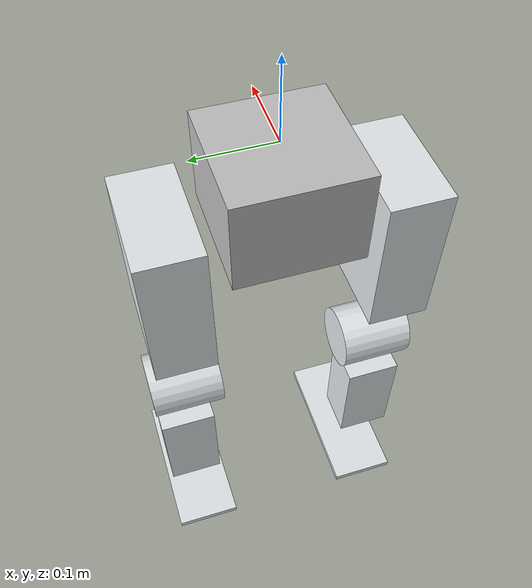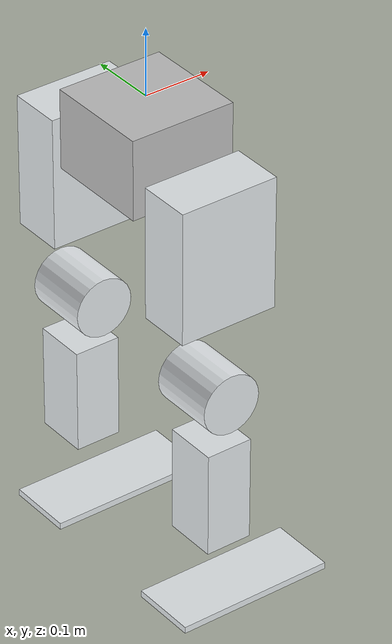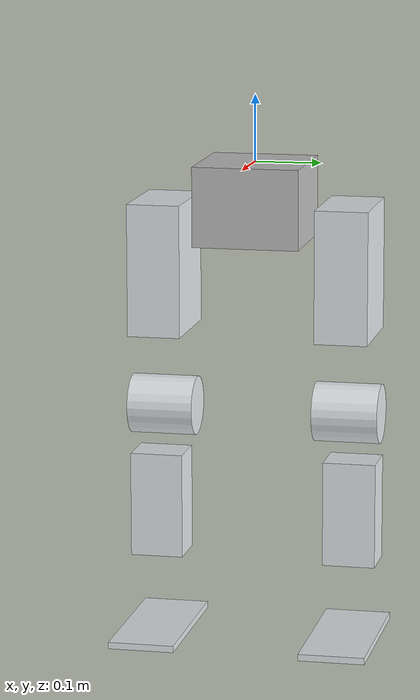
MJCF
<mujoco model="alexbotmini">
  <compiler angle="radian" />
    <default>
        <joint limited='true'/>
        <motor ctrllimited='true'/>
        <geom  condim='4' contype="1" conaffinity="15" solref='0.001 2' friction='0.9 0.2 0.2'/>
        <equality solref='0.001 2'/>
    </default>

  <asset>
    <mesh name="base_link"  file="../meshes/base_link.STL"/>

    <mesh name="rightlink1" file="../meshes/rightlink1.STL"/>
    <mesh name="rightlink2" file="../meshes/rightlink2.STL"/>
    <mesh name="rightlink3" file="../meshes/rightlink3.STL"/>
    <mesh name="rightlink4" file="../meshes/rightlink4.STL"/>
    <mesh name="rightlink5" file="../meshes/rightlink5.STL"/>
    <mesh name="rightlink6" file="../meshes/rightlink6.STL"/>

    <mesh name="leftlink1" file="../meshes/leftlink1.STL"/>
    <mesh name="leftlink2" file="../meshes/leftlink2.STL"/>
    <mesh name="leftlink3" file="../meshes/leftlink3.STL"/>
    <mesh name="leftlink4" file="../meshes/leftlink4.STL"/>
    <mesh name="leftlink5" file="../meshes/leftlink5.STL"/>
    <mesh name="leftlink6" file="../meshes/leftlink6.STL"/>
  </asset>

  <worldbody>
    <body name="base_link">
      <inertial pos="-5.403e-06 0.00054897 -0.042272" quat="0.497661 0.503807 -0.502387 0.496104" mass="3.703" diaginertia="0.00451696 0.0043789 0.00283774" />
      <geom size="0.08 0.08 0.06" pos="0 0 -0.06" type="box" rgba="0.75294 0.75294 0.75294 1" />
      <body name="leftlink1" pos="0 0.091 -0.08">
        <inertial pos="-0.021825 0.017592 6.1019e-06" quat="0.575052 0.576736 0.411349 0.409246" mass="1.30624" diaginertia="0.00104643 0.000780462 0.000623433" />
        <joint name="leftjoint1" pos="0 0 0" axis="0 1 0" range="-1 1" actuatorfrcrange="-96 96" />
        <body name="leftlink2" pos="-0.0816 0.052 -0.0002344">
          <inertial pos="0.014318 8.5098e-07 -0.072113" quat="0.993976 2.78847e-05 -0.109597 -0.000232737" mass="1.75604" diaginertia="0.00354024 0.0034561 0.00116316" />
          <joint name="leftjoint2" pos="0 0 0" axis="-1 0 0" range="-1 1" actuatorfrcrange="-51 51" />
          <geom size="0.075 0.04 0.1" pos="0.08 0 -0.08" type="box" rgba="0.89804 0.91765 0.92941 1" />
          <body name="leftlink3" pos="0.078 0 -0.15861">
            <inertial pos="-0.00024643 0.0080676 -0.048991" quat="0.709282 -0.00565632 0.00661169 0.704872" mass="2.11496" diaginertia="0.00261144 0.00223609 0.00120197" />
            <joint name="leftjoint3" pos="0 0 0" axis="0 0 -1" range="-1 1" actuatorfrcrange="-51 51" />
            <geom size="0.045 0.05" pos="0 0 -0.14" quat="0.707388 0.706825 0 0" type="cylinder" rgba="0.89804 0.91765 0.92941 1" />
            <body name="leftlink4" pos="0 0.027 -0.142">
              <inertial pos="-0.0054767 -0.017536 -0.11984" quat="0.71232 -0.0355421 0.0396314 0.699833" mass="2.17494" diaginertia="0.00903837 0.0083506 0.00144842" />
              <joint name="leftjoint4" pos="0 0 0" axis="0 1 0" range="-1 1" actuatorfrcrange="-96 96" />
              <geom size="0.035 0.04 0.08" pos="0 -0.02 -0.15" type="box" rgba="0.89804 0.91765 0.92941 1" />
              <body name="leftlink5" pos="-0.0062437 -0.023 -0.289">
                <inertial pos="-1.2466e-08 -1.3708e-08 0" quat="0.707107 0.707107 0 0" mass="0.017311" diaginertia="1.816e-06 1.529e-06 1.28e-06" />
                <joint name="leftjoint5" pos="0 0 0" axis="0 -1 0" range="-1 1" actuatorfrcrange="-30 30" />
                <body name="leftlink6">
                  <inertial pos="0.029447 0.0002491 -0.034298" quat="-0.00067815 0.710986 -0.00146158 0.703204" mass="0.5" diaginertia="0.00252937 0.0022494 0.000344583" />
                  <joint name="leftjoint6" pos="0 0 0" axis="1 0 0" range="-1 1" actuatorfrcrange="-30 30" />
                  <geom size="0.05 0.12 0.005" pos="0.05 0 -0.048" quat="0.707388 0 0 0.706825" type="box" rgba="0.89804 0.91765 0.92941 1" />
                </body>
              </body>
            </body>
          </body>
        </body>
      </body>
      <body name="rightlink1" pos="0 -0.089 -0.08">
        <inertial pos="-0.021825 -0.017467 1.1831e-05" quat="0.410583 0.410154 0.57505 0.576639" mass="1.30624" diaginertia="0.00104612 0.000780681 0.000623543" />
        <joint name="rightjoint1" pos="0 0 0" axis="0 -1 0" range="-1 1" actuatorfrcrange="-96 96" />
        <body name="rightlink2" pos="-0.0816 -0.052 0.0002344">
          <inertial pos="0.014349 -3.4419e-05 -0.072113" quat="0.99398 5.01862e-05 -0.109556 -0.000608003" mass="1.75604" diaginertia="0.00354162 0.0034547 0.00116318" />
          <joint name="rightjoint2" pos="0 0 0" axis="-1 0 0" range="-1 1" actuatorfrcrange="-51 51" />
          <geom size="0.075 0.04 0.1" pos="0.08 0 -0.08" type="box" rgba="0.89804 0.91765 0.92941 1" />
          <body name="rightlink3" pos="0.078 0 -0.15861">
            <inertial pos="7.7184e-05 -0.0080763 -0.048796" quat="0.70892 0.00521389 -0.00708648 0.705234" mass="2.115" diaginertia="0.00261134 0.0022322 0.00120577" />
            <joint name="rightjoint3" pos="0 0 0" axis="0 0 -1" range="-1 1" actuatorfrcrange="-51 51" />
            <geom size="0.045 0.05" pos="0 0 -0.14" quat="0.707388 0.706825 0 0" type="cylinder" rgba="0.89804 0.91765 0.92941 1" />
            <body name="rightlink4" pos="0 -0.027 -0.142">
              <inertial pos="-0.00548131 0.0175314 -0.119816" quat="0.699812 0.0396951 -0.0355888 0.712334" mass="2.17494" diaginertia="0.00903925 0.00835113 0.00144797" />
              <joint name="rightjoint4" pos="0 0 0" axis="0 -1 0" range="-1 1" actuatorfrcrange="-96 96" />
              <geom size="0.035 0.04 0.08" pos="0 0.02 -0.15" type="box" rgba="0.898039 0.917647 0.929412 1" />
              <body name="rightlink5" pos="-0.0062206 0.025 -0.289">
                <inertial pos="2.0918e-06 3.5218e-08 2.6626e-09" quat="0.707114 0.7071 -1.25421e-05 7.44322e-06" mass="0.017311" diaginertia="1.8715e-06 1.5845e-06 1.3811e-06" />
                <joint name="rightjoint5" pos="0 0 0" axis="0 1 0" range="-1 1" actuatorfrcrange="-30 30" />
                <body name="rightlink6">
                  <inertial pos="0.022759 -0.00027434 -0.031905" quat="0.000767634 0.710246 0.00172276 0.703951" mass="0.5" diaginertia="0.00163941 0.0014542 0.000236287" />
                  <joint name="rightjoint6" pos="0 0 0" axis="-1 0 0" range="-1 1" actuatorfrcrange="-30 30" />
                  <geom size="0.05 0.12 0.005" pos="0.05 0 -0.048" quat="0.707388 0 0 0.706825" type="box" rgba="0.89804 0.91765 0.92941 1" />
                </body>
              </body>
            </body>
          </body>
        </body>
      </body>
    </body>
  </worldbody>
  <actuator>

        <motor name="rightjoint1"  joint="rightjoint1" gear="1" ctrllimited="true" ctrlrange="-150 150"/>
        <motor name="rightjoint2"  joint="rightjoint2" gear="1" ctrllimited="true" ctrlrange="-80 80"/>
        <motor name="rightjoint3"  joint="rightjoint3" gear="1" ctrllimited="true" ctrlrange="-80 80"/>
        <motor name="rightjoint4"  joint="rightjoint4" gear="1" ctrllimited="true" ctrlrange="-150 150"/>
        <motor name="rightjoint5"  joint="rightjoint5" gear="1" ctrllimited="true" ctrlrange="-58.5 58.5"/>
        <motor name="rightjoint6"  joint="rightjoint6" gear="1" ctrllimited="true" ctrlrange="-58.5 58.5"/>

        <motor name="leftjoint1"  joint="leftjoint1" gear="1" ctrllimited="true" ctrlrange="-150 150"/>
        <motor name="leftjoint2"  joint="leftjoint2" gear="1" ctrllimited="true" ctrlrange="-80 80"/>
        <motor name="leftjoint3"  joint="leftjoint3" gear="1" ctrllimited="true" ctrlrange="-80 80"/>
        <motor name="leftjoint4"  joint="leftjoint4" gear="1" ctrllimited="true" ctrlrange="-150 150"/>
        <motor name="leftjoint5"  joint="leftjoint5" gear="1" ctrllimited="true" ctrlrange="-58.5 58.5"/>
        <motor name="leftjoint6"  joint="leftjoint6" gear="1" ctrllimited="true" ctrlrange="-58.5 58.5"/>

    </actuator>

      <sensor>

        <framequat     name='orientation' objtype='site' noise='0.001' objname='imu'/>
          <framepos     name='position' objtype='site' noise='0.001' objname='imu'/>
          <gyro          name='angular-velocity'    site='imu' noise='0.005' cutoff='34.9'/>
          <velocimeter   name='linear-velocity'     site='imu' noise='0.001' cutoff='30'/>
          <accelerometer name='linear-acceleration' site='imu' noise='0.005' cutoff='157'/>
          <magnetometer  name='magnetometer'        site='imu'/>

      </sensor>
</mujoco>
